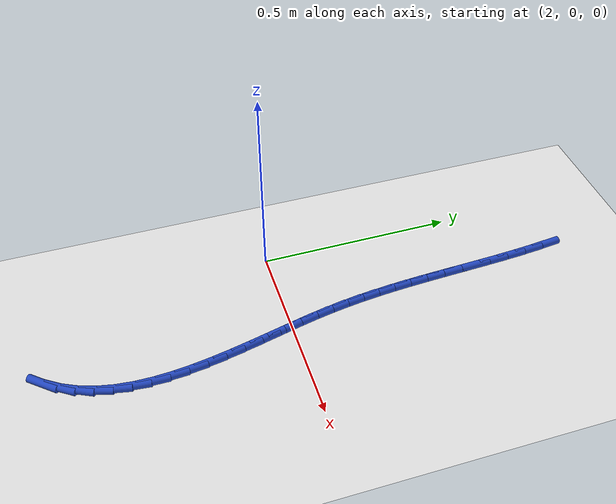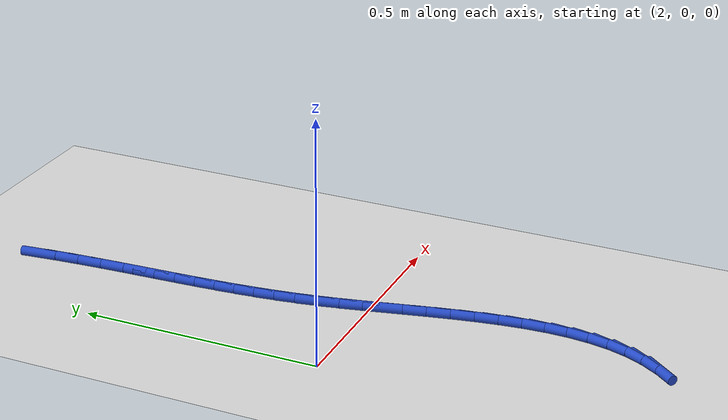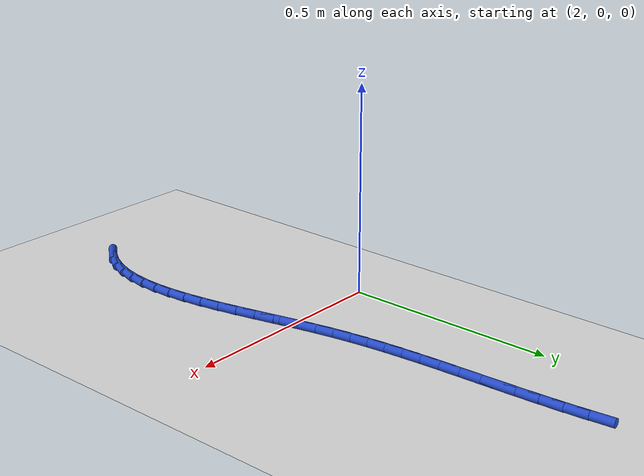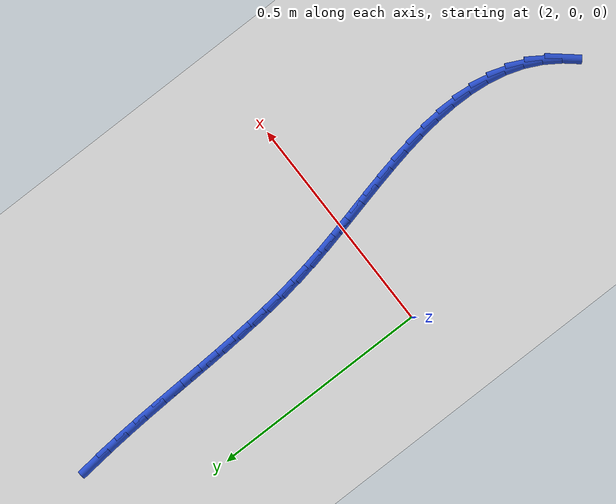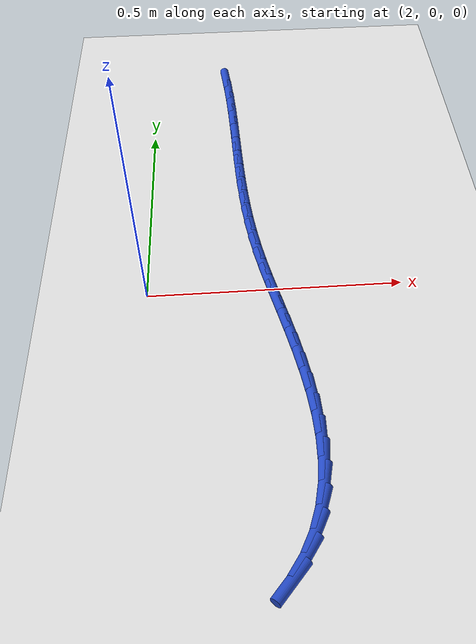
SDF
<sdf version="1.6">
 <world name="default">
  <model name="ground_plane">
   <static>1</static>
   <link name="link">
    <collision name="collision">
     <geometry><plane><normal>0 0 1</normal><size>100 100</size></plane></geometry>
     <surface><friction><ode><mu>100</mu><mu2>50</mu2></ode></friction></surface>
    </collision>
    <visual name="visual">
     <cast_shadows>0</cast_shadows>
     <geometry><plane><normal>0 0 1</normal><size>100 100</size></plane></geometry>
     <material>
      <script><uri>file://media/materials/scripts/gazebo.material</uri><name>Gazebo/WhiteGlow</name></script>
     </material>
    </visual>
   </link>
  </model>
  <model name="line">
   <link name="link_75">
    <pose>2.1717243785295515 0.7216779665799076 0.01 0 1.57 -1.4717631658390051</pose>
    <collision name="collision">
     <geometry><cylinder><radius>0.01</radius><length>0.08</length></cylinder></geometry>
    </collision>
    <visual name="visual">
     <material>
      <script><name>Gazebo/Blue</name><uri>file://media/materials/scripts/gazebo.material</uri></script>
     </material>
     <geometry><cylinder><radius>0.01</radius><length>0.08</length></cylinder></geometry>
    </visual>
   </link>
   <link name="link_76">
    <pose>2.1769286995342467 0.6692985826345556 0.01 0 1.57 -1.495070344782296</pose>
    <collision name="collision">
     <geometry><cylinder><radius>0.01</radius><length>0.08</length></cylinder></geometry>
    </collision>
    <visual name="visual">
     <material>
      <script><name>Gazebo/Blue</name><uri>file://media/materials/scripts/gazebo.material</uri></script>
     </material>
     <geometry><cylinder><radius>0.01</radius><length>0.08</length></cylinder></geometry>
    </visual>
   </link>
   <link name="link_77">
    <pose>2.180941481356885 0.616409092779238 0.01 0 1.57 -1.5119328061815316</pose>
    <collision name="collision">
     <geometry><cylinder><radius>0.01</radius><length>0.08</length></cylinder></geometry>
    </collision>
    <visual name="visual">
     <material>
      <script><name>Gazebo/Blue</name><uri>file://media/materials/scripts/gazebo.material</uri></script>
     </material>
     <geometry><cylinder><radius>0.01</radius><length>0.08</length></cylinder></geometry>
    </visual>
   </link>
   <link name="link_78">
    <pose>2.1840498253563223 0.5636641483848724 0.01 0 1.57 -1.522879012066339</pose>
    <collision name="collision">
     <geometry><cylinder><radius>0.01</radius><length>0.08</length></cylinder></geometry>
    </collision>
    <visual name="visual">
     <material>
      <script><name>Gazebo/Blue</name><uri>file://media/materials/scripts/gazebo.material</uri></script>
     </material>
     <geometry><cylinder><radius>0.01</radius><length>0.08</length></cylinder></geometry>
    </visual>
   </link>
   <link name="link_79">
    <pose>2.1865408328914158 0.5117184008223746 0.01 0 1.57 -1.5280279847247782</pose>
    <collision name="collision">
     <geometry><cylinder><radius>0.01</radius><length>0.08</length></cylinder></geometry>
    </collision>
    <visual name="visual">
     <material>
      <script><name>Gazebo/Blue</name><uri>file://media/materials/scripts/gazebo.material</uri></script>
     </material>
     <geometry><cylinder><radius>0.01</radius><length>0.08</length></cylinder></geometry>
    </visual>
   </link>
   <link name="link_80">
    <pose>2.1887016053210204 0.46122650146266025 0.01 0 1.57 -1.5272361659839802</pose>
    <collision name="collision">
     <geometry><cylinder><radius>0.01</radius><length>0.08</length></cylinder></geometry>
    </collision>
    <visual name="visual">
     <material>
      <script><name>Gazebo/Blue</name><uri>file://media/materials/scripts/gazebo.material</uri></script>
     </material>
     <geometry><cylinder><radius>0.01</radius><length>0.08</length></cylinder></geometry>
    </visual>
   </link>
   <link name="link_81">
    <pose>2.1908131775494124 0.4127823162389064 0.01 0 1.57 -1.5217197132394809</pose>
    <collision name="collision">
     <geometry><cylinder><radius>0.01</radius><length>0.08</length></cylinder></geometry>
    </collision>
    <visual name="visual">
     <material>
      <script><name>Gazebo/Blue</name><uri>file://media/materials/scripts/gazebo.material</uri></script>
     </material>
     <geometry><cylinder><radius>0.01</radius><length>0.08</length></cylinder></geometry>
    </visual>
   </link>
   <link name="link_82">
    <pose>2.1930937459850255 0.36635007388410823 0.01 0 1.57 -1.5121822498236943</pose>
    <collision name="collision">
     <geometry><cylinder><radius>0.01</radius><length>0.08</length></cylinder></geometry>
    </collision>
    <visual name="visual">
     <material>
      <script><name>Gazebo/Blue</name><uri>file://media/materials/scripts/gazebo.material</uri></script>
     </material>
     <geometry><cylinder><radius>0.01</radius><length>0.08</length></cylinder></geometry>
    </visual>
   </link>
   <link name="link_83">
    <pose>2.195724339572399 0.32152158782133233 0.01 0 1.57 -1.498481643968661</pose>
    <collision name="collision">
     <geometry><cylinder><radius>0.01</radius><length>0.08</length></cylinder></geometry>
    </collision>
    <visual name="visual">
     <material>
      <script><name>Gazebo/Blue</name><uri>file://media/materials/scripts/gazebo.material</uri></script>
     </material>
     <geometry><cylinder><radius>0.01</radius><length>0.08</length></cylinder></geometry>
    </visual>
   </link>
   <link name="link_84">
    <pose>2.198885503133725 0.2778838206026253 0.01 0 1.57 -1.4806939934331027</pose>
    <collision name="collision">
     <geometry><cylinder><radius>0.01</radius><length>0.08</length></cylinder></geometry>
    </collision>
    <visual name="visual">
     <material>
      <script><name>Gazebo/Blue</name><uri>file://media/materials/scripts/gazebo.material</uri></script>
     </material>
     <geometry><cylinder><radius>0.01</radius><length>0.08</length></cylinder></geometry>
    </visual>
   </link>
   <link name="link_85">
    <pose>2.2027577814911976 0.23502373478003188 0.01 0 1.57 -1.459157759292304</pose>
    <collision name="collision">
     <geometry><cylinder><radius>0.01</radius><length>0.08</length></cylinder></geometry>
    </collision>
    <visual name="visual">
     <material>
      <script><name>Gazebo/Blue</name><uri>file://media/materials/scripts/gazebo.material</uri></script>
     </material>
     <geometry><cylinder><radius>0.01</radius><length>0.08</length></cylinder></geometry>
    </visual>
   </link>
   <link name="link_86">
    <pose>2.2075217194670076 0.19252829290559834 0.01 0 1.57 -1.4344677227691311</pose>
    <collision name="collision">
     <geometry><cylinder><radius>0.01</radius><length>0.08</length></cylinder></geometry>
    </collision>
    <visual name="visual">
     <material>
      <script><name>Gazebo/Blue</name><uri>file://media/materials/scripts/gazebo.material</uri></script>
     </material>
     <geometry><cylinder><radius>0.01</radius><length>0.08</length></cylinder></geometry>
    </visual>
   </link>
   <link name="link_87">
    <pose>2.21335786188335 0.14998445753136988 0.01 0 1.57 -1.4074276541994448</pose>
    <collision name="collision">
     <geometry><cylinder><radius>0.01</radius><length>0.08</length></cylinder></geometry>
    </collision>
    <visual name="visual">
     <material>
      <script><name>Gazebo/Blue</name><uri>file://media/materials/scripts/gazebo.material</uri></script>
     </material>
     <geometry><cylinder><radius>0.01</radius><length>0.08</length></cylinder></geometry>
    </visual>
   </link>
   <link name="link_88">
    <pose>2.2204467535624164 0.10697919120939167 0.01 0 1.57 -1.3790830893940322</pose>
    <collision name="collision">
     <geometry><cylinder><radius>0.01</radius><length>0.08</length></cylinder></geometry>
    </collision>
    <visual name="visual">
     <material>
      <script><name>Gazebo/Blue</name><uri>file://media/materials/scripts/gazebo.material</uri></script>
     </material>
     <geometry><cylinder><radius>0.01</radius><length>0.08</length></cylinder></geometry>
    </visual>
   </link>
   <link name="link_89">
    <pose>2.228962515747803 0.0631054534125606 0.01 0 1.57 -1.3550043156091547</pose>
    <collision name="collision">
     <geometry><cylinder><radius>0.01</radius><length>0.08</length></cylinder></geometry>
    </collision>
    <visual name="visual">
     <material>
      <script><name>Gazebo/Blue</name><uri>file://media/materials/scripts/gazebo.material</uri></script>
     </material>
     <geometry><cylinder><radius>0.01</radius><length>0.08</length></cylinder></geometry>
    </visual>
   </link>
   <link name="link_90">
    <pose>2.2388029068647475 0.018214210256399285 0.01 0 1.57 -1.341098192043429</pose>
    <collision name="collision">
     <geometry><cylinder><radius>0.01</radius><length>0.08</length></cylinder></geometry>
    </collision>
    <visual name="visual">
     <material>
      <script><name>Gazebo/Blue</name><uri>file://media/materials/scripts/gazebo.material</uri></script>
     </material>
     <geometry><cylinder><radius>0.01</radius><length>0.08</length></cylinder></geometry>
    </visual>
   </link>
   <link name="link_91">
    <pose>2.249490456114505 -0.027493265858255553 0.01 0 1.57 -1.336904773910523</pose>
    <collision name="collision">
     <geometry><cylinder><radius>0.01</radius><length>0.08</length></cylinder></geometry>
    </collision>
    <visual name="visual">
     <material>
      <script><name>Gazebo/Blue</name><uri>file://media/materials/scripts/gazebo.material</uri></script>
     </material>
     <geometry><cylinder><radius>0.01</radius><length>0.08</length></cylinder></geometry>
    </visual>
   </link>
   <link name="link_92">
    <pose>2.2605209142901437 -0.07379070275950123 0.01 0 1.57 -1.3419399847780724</pose>
    <collision name="collision">
     <geometry><cylinder><radius>0.01</radius><length>0.08</length></cylinder></geometry>
    </collision>
    <visual name="visual">
     <material>
      <script><name>Gazebo/Blue</name><uri>file://media/materials/scripts/gazebo.material</uri></script>
     </material>
     <geometry><cylinder><radius>0.01</radius><length>0.08</length></cylinder></geometry>
    </visual>
   </link>
   <link name="link_93">
    <pose>2.2713900321847316 -0.12045182827543237 0.01 0 1.57 -1.3561249875827166</pose>
    <collision name="collision">
     <geometry><cylinder><radius>0.01</radius><length>0.08</length></cylinder></geometry>
    </collision>
    <visual name="visual">
     <material>
      <script><name>Gazebo/Blue</name><uri>file://media/materials/scripts/gazebo.material</uri></script>
     </material>
     <geometry><cylinder><radius>0.01</radius><length>0.08</length></cylinder></geometry>
    </visual>
   </link>
   <link name="link_94">
    <pose>2.2815935605913404 -0.16725037023414643 0.01 0 1.57 -1.3797541491646406</pose>
    <collision name="collision">
     <geometry><cylinder><radius>0.01</radius><length>0.08</length></cylinder></geometry>
    </collision>
    <visual name="visual">
     <material>
      <script><name>Gazebo/Blue</name><uri>file://media/materials/scripts/gazebo.material</uri></script>
     </material>
     <geometry><cylinder><radius>0.01</radius><length>0.08</length></cylinder></geometry>
    </visual>
   </link>
   <link name="link_95">
    <pose>2.290627250303036 -0.21396005646373986 0.01 0 1.57 -1.4134764585083037</pose>
    <collision name="collision">
     <geometry><cylinder><radius>0.01</radius><length>0.08</length></cylinder></geometry>
    </collision>
    <visual name="visual">
     <material>
      <script><name>Gazebo/Blue</name><uri>file://media/materials/scripts/gazebo.material</uri></script>
     </material>
     <geometry><cylinder><radius>0.01</radius><length>0.08</length></cylinder></geometry>
    </visual>
   </link>
   <link name="link_96">
    <pose>2.2979868521128903 -0.26035461479230915 0.01 0 1.57 -1.4582767025828494</pose>
    <collision name="collision">
     <geometry><cylinder><radius>0.01</radius><length>0.08</length></cylinder></geometry>
    </collision>
    <visual name="visual">
     <material>
      <script><name>Gazebo/Blue</name><uri>file://media/materials/scripts/gazebo.material</uri></script>
     </material>
     <geometry><cylinder><radius>0.01</radius><length>0.08</length></cylinder></geometry>
    </visual>
   </link>
   <link name="link_97">
    <pose>2.3031681168139713 -0.30620777304795077 0.01 0 1.57 -1.5154320599389581</pose>
    <collision name="collision">
     <geometry><cylinder><radius>0.01</radius><length>0.08</length></cylinder></geometry>
    </collision>
    <visual name="visual">
     <material>
      <script><name>Gazebo/Blue</name><uri>file://media/materials/scripts/gazebo.material</uri></script>
     </material>
     <geometry><cylinder><radius>0.01</radius><length>0.08</length></cylinder></geometry>
    </visual>
   </link>
   <link name="link_98">
    <pose>2.3056667951993486 -0.3512932590587622 0.01 0 1.57 1.5551901301456426</pose>
    <collision name="collision">
     <geometry><cylinder><radius>0.01</radius><length>0.08</length></cylinder></geometry>
    </collision>
    <visual name="visual">
     <material>
      <script><name>Gazebo/Blue</name><uri>file://media/materials/scripts/gazebo.material</uri></script>
     </material>
     <geometry><cylinder><radius>0.01</radius><length>0.08</length></cylinder></geometry>
    </visual>
   </link>
   <link name="link_99">
    <pose>2.3049786380620914 -0.3953848006528381 0.01 0 1.57 1.4690008947099553</pose>
    <collision name="collision">
     <geometry><cylinder><radius>0.01</radius><length>0.08</length></cylinder></geometry>
    </collision>
    <visual name="visual">
     <material>
      <script><name>Gazebo/Blue</name><uri>file://media/materials/scripts/gazebo.material</uri></script>
     </material>
     <geometry><cylinder><radius>0.01</radius><length>0.08</length></cylinder></geometry>
    </visual>
   </link>
   <link name="link_100">
    <pose>2.3005993961952678 -0.4382561256582756 0.01 0 1.57 1.3666876034626838</pose>
    <collision name="collision">
     <geometry><cylinder><radius>0.01</radius><length>0.08</length></cylinder></geometry>
    </collision>
    <visual name="visual">
     <material>
      <script><name>Gazebo/Blue</name><uri>file://media/materials/scripts/gazebo.material</uri></script>
     </material>
     <geometry><cylinder><radius>0.01</radius><length>0.08</length></cylinder></geometry>
    </visual>
   </link>
   <link name="link_101">
    <pose>2.2920248203919487 -0.4796809619031716 0.01 0 1.57 1.2485145619801443</pose>
    <collision name="collision">
     <geometry><cylinder><radius>0.01</radius><length>0.08</length></cylinder></geometry>
    </collision>
    <visual name="visual">
     <material>
      <script><name>Gazebo/Blue</name><uri>file://media/materials/scripts/gazebo.material</uri></script>
     </material>
     <geometry><cylinder><radius>0.01</radius><length>0.08</length></cylinder></geometry>
    </visual>
   </link>
   <link name="link_102">
    <pose>2.278750661445202 -0.5194330372156223 0.01 0 1.57 1.1166729657357275</pose>
    <collision name="collision">
     <geometry><cylinder><radius>0.01</radius><length>0.08</length></cylinder></geometry>
    </collision>
    <visual name="visual">
     <material>
      <script><name>Gazebo/Blue</name><uri>file://media/materials/scripts/gazebo.material</uri></script>
     </material>
     <geometry><cylinder><radius>0.01</radius><length>0.08</length></cylinder></geometry>
    </visual>
   </link>
   <link name="link_103">
    <pose>2.260272670148097 -0.557286079423725 0.01 0 1.57 0.9794725065540709</pose>
    <collision name="collision">
     <geometry><cylinder><radius>0.01</radius><length>0.08</length></cylinder></geometry>
    </collision>
    <visual name="visual">
     <material>
      <script><name>Gazebo/Blue</name><uri>file://media/materials/scripts/gazebo.material</uri></script>
     </material>
     <geometry><cylinder><radius>0.01</radius><length>0.08</length></cylinder></geometry>
    </visual>
   </link>
   <link name="link_104">
    <pose>2.2362409357939055 -0.5930755684361447 0.01 0 1.57 0.8661509139422084</pose>
    <collision name="collision">
     <geometry><cylinder><radius>0.01</radius><length>0.08</length></cylinder></geometry>
    </collision>
    <visual name="visual">
     <material>
      <script><name>Gazebo/Blue</name><uri>file://media/materials/scripts/gazebo.material</uri></script>
     </material>
     <geometry><cylinder><radius>0.01</radius><length>0.08</length></cylinder></geometry>
    </visual>
   </link>
  </model>
 </world>
</sdf>
